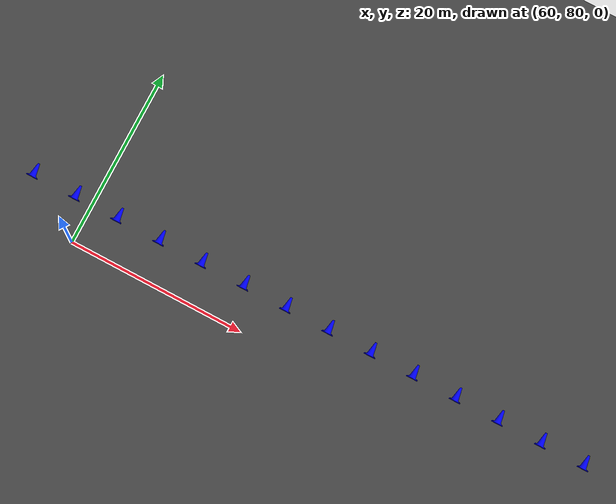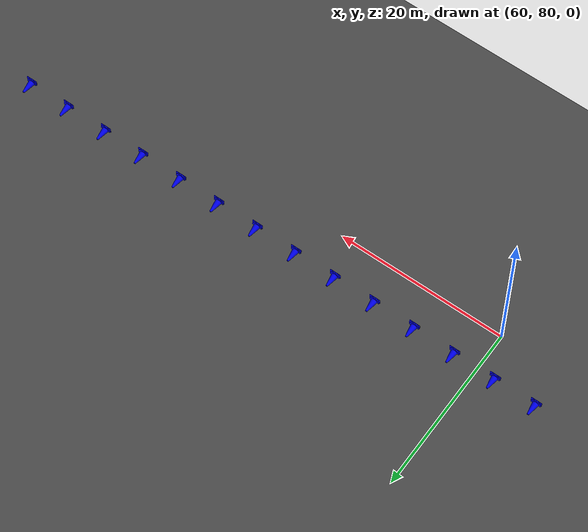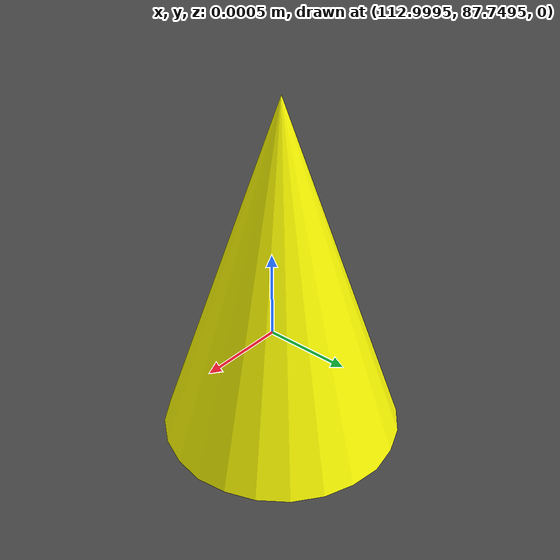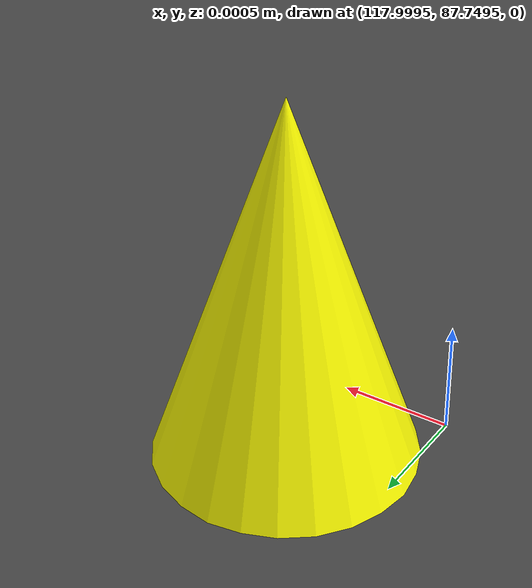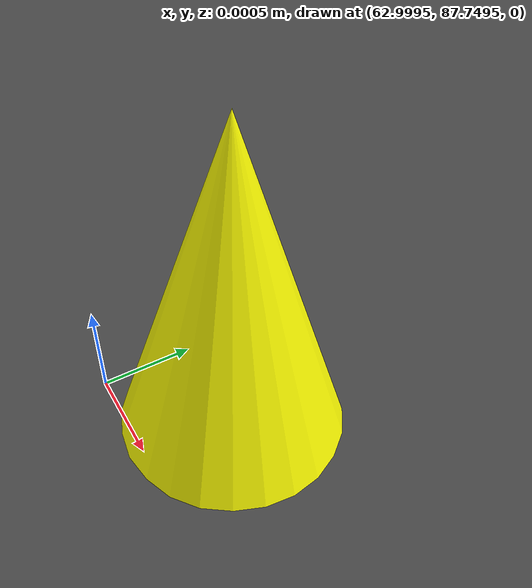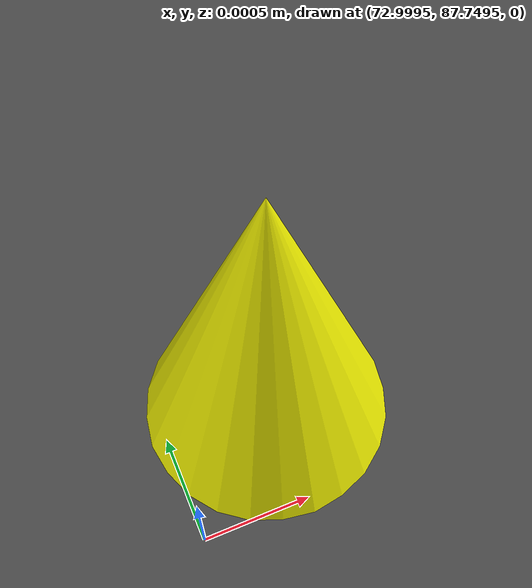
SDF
<sdf version="1.7">
 <world name="generated_world">
  <scene><sky><clouds><speed>12</speed></clouds></sky><grid>false</grid><shadows>1</shadows></scene>
  <physics type="ode">
   <max_step_size>0.001</max_step_size>
   <real_time_update_rate>1000</real_time_update_rate>
  </physics>
  <include><uri>model://sun</uri></include>
  <model name="asphalt_ground">
   <static>1</static>
   <link name="link">
    <collision name="collision">
     <geometry><plane><normal>0 0 1</normal><size>300 300</size></plane></geometry>
     <surface><friction><ode><mu>100</mu><mu2>50</mu2></ode></friction></surface>
    </collision>
    <visual name="visual">
     <geometry><plane><normal>0 0 1</normal><size>300 300</size></plane></geometry>
     <material>
      <script><uri>file://media/materials/scripts/gazebo.material</uri><name>Gazebo/Asphalt</name></script>
     </material>
    </visual>
   </link>
  </model>
  <include>
   <uri>model://cone_yellow</uri>
   <name>cone_yellow_001</name>
   <pose>53.000 87.750 0 0 0 0</pose>
  </include>
  <include>
   <uri>model://cone_yellow</uri>
   <name>cone_yellow_002</name>
   <pose>58.000 87.750 0 0 0 0</pose>
  </include>
  <include>
   <uri>model://cone_yellow</uri>
   <name>cone_yellow_003</name>
   <pose>63.000 87.750 0 0 0 0</pose>
  </include>
  <include>
   <uri>model://cone_yellow</uri>
   <name>cone_yellow_004</name>
   <pose>68.000 87.750 0 0 0 0</pose>
  </include>
  <include>
   <uri>model://cone_yellow</uri>
   <name>cone_yellow_005</name>
   <pose>73.000 87.750 0 0 0 0</pose>
  </include>
  <include>
   <uri>model://cone_yellow</uri>
   <name>cone_yellow_006</name>
   <pose>78.000 87.750 0 0 0 0</pose>
  </include>
  <include>
   <uri>model://cone_yellow</uri>
   <name>cone_yellow_007</name>
   <pose>83.000 87.750 0 0 0 0</pose>
  </include>
  <include>
   <uri>model://cone_yellow</uri>
   <name>cone_yellow_008</name>
   <pose>88.000 87.750 0 0 0 0</pose>
  </include>
  <include>
   <uri>model://cone_yellow</uri>
   <name>cone_yellow_009</name>
   <pose>93.000 87.750 0 0 0 0</pose>
  </include>
  <include>
   <uri>model://cone_yellow</uri>
   <name>cone_yellow_010</name>
   <pose>98.000 87.750 0 0 0 0</pose>
  </include>
  <include>
   <uri>model://cone_yellow</uri>
   <name>cone_yellow_011</name>
   <pose>103.000 87.750 0 0 0 0</pose>
  </include>
  <include>
   <uri>model://cone_yellow</uri>
   <name>cone_yellow_012</name>
   <pose>108.000 87.750 0 0 0 0</pose>
  </include>
  <include>
   <uri>model://cone_yellow</uri>
   <name>cone_yellow_013</name>
   <pose>113.000 87.750 0 0 0 0</pose>
  </include>
  <include>
   <uri>model://cone_yellow</uri>
   <name>cone_yellow_014</name>
   <pose>118.000 87.750 0 0 0 0</pose>
  </include>
  <include><uri>model://cone_blue</uri><name>cone_blue_001</name><pose>53.000 84.250 0 0 0 0</pose></include>
  <include><uri>model://cone_blue</uri><name>cone_blue_002</name><pose>58.000 84.250 0 0 0 0</pose></include>
  <include><uri>model://cone_blue</uri><name>cone_blue_003</name><pose>63.000 84.250 0 0 0 0</pose></include>
  <include><uri>model://cone_blue</uri><name>cone_blue_004</name><pose>68.000 84.250 0 0 0 0</pose></include>
  <include><uri>model://cone_blue</uri><name>cone_blue_005</name><pose>73.000 84.250 0 0 0 0</pose></include>
  <include><uri>model://cone_blue</uri><name>cone_blue_006</name><pose>78.000 84.250 0 0 0 0</pose></include>
  <include><uri>model://cone_blue</uri><name>cone_blue_007</name><pose>83.000 84.250 0 0 0 0</pose></include>
  <include><uri>model://cone_blue</uri><name>cone_blue_008</name><pose>88.000 84.250 0 0 0 0</pose></include>
  <include><uri>model://cone_blue</uri><name>cone_blue_009</name><pose>93.000 84.250 0 0 0 0</pose></include>
  <include><uri>model://cone_blue</uri><name>cone_blue_010</name><pose>98.000 84.250 0 0 0 0</pose></include>
  <include><uri>model://cone_blue</uri><name>cone_blue_011</name><pose>103.000 84.250 0 0 0 0</pose></include>
  <include><uri>model://cone_blue</uri><name>cone_blue_012</name><pose>108.000 84.250 0 0 0 0</pose></include>
  <include><uri>model://cone_blue</uri><name>cone_blue_013</name><pose>113.000 84.250 0 0 0 0</pose></include>
  <include><uri>model://cone_blue</uri><name>cone_blue_014</name><pose>118.000 84.250 0 0 0 0</pose></include>
 </world>
</sdf>

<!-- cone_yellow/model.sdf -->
<sdf version="1.6">
  <model name="cone_yellow">
    <static>1</static>
    <link name="link">

      <visual name="visual">
        <pose>0 0 0 0 0 0</pose>
        <geometry>
          <mesh>
            <uri>model://cone_yellow/meshes/cone.stl</uri>
            <scale>0.005 0.005 0.005</scale>
          </mesh>
        </geometry>
        <material>
          <ambient>1.0 1.0 0.0 1</ambient>
          <diffuse>1.0 1.0 0.0 1</diffuse>
        </material>
      </visual>

      <collision name="collision">
        <pose>0 0 0.15 0 0 0</pose>
        <geometry>
          <cylinder>
            <radius>0.1</radius>
            <length>0.3</length>
          </cylinder>
        </geometry>
        <surface>
          <friction>
            <ode>
              <mu>0.9</mu> <mu2>0.9</mu2> </ode>
          </friction>
        </surface>
      </collision>

      <inertial>
        <pose>0 0 0.05 0 0 0</pose>
        <mass>1</mass>
        <inertia>
          <ixx>0.01</ixx> <iyy>0.01</iyy> <izz>0.005</izz>
          <ixy>0.0</ixy> <ixz>0.0</ixz> <iyz>0.0</iyz>
        </inertia>
      </inertial>

    </link>
  </model>
</sdf>

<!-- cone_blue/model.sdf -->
<sdf version="1.6">
  <model name="cone_blue">
    <static>1</static>
    <link name="link">

      <inertial>
        <pose>0 0 0.05 0 0 0</pose> <mass>1</mass>
        <inertia>
          <ixx>0.01</ixx> <iyy>0.01</iyy> <izz>0.005</izz>
          <ixy>0.0</ixy> <ixz>0.0</ixz> <iyz>0.0</iyz>
        </inertia>
      </inertial>

      <collision name="collision">
        <pose>0 0 0.15 0 0 0</pose>
        <geometry>
          <cylinder>
            <radius>0.1</radius>
            <length>0.3</length>
          </cylinder>
        </geometry>
      </collision>

      <visual name="visual">
        <pose>0 0 0 0 0 0</pose>
        <geometry>
          <mesh>
            <uri>model://cone_blue/meshes/cone.stl</uri>
            <scale>0.005 0.005 0.005</scale>
          </mesh>
        </geometry>
        <material>
          <ambient>0.0 0.0 1.0 1</ambient>
          <diffuse>0.0 0.0 1.0 1</diffuse>
        </material>
      </visual>

    </link>
  </model>
</sdf>
